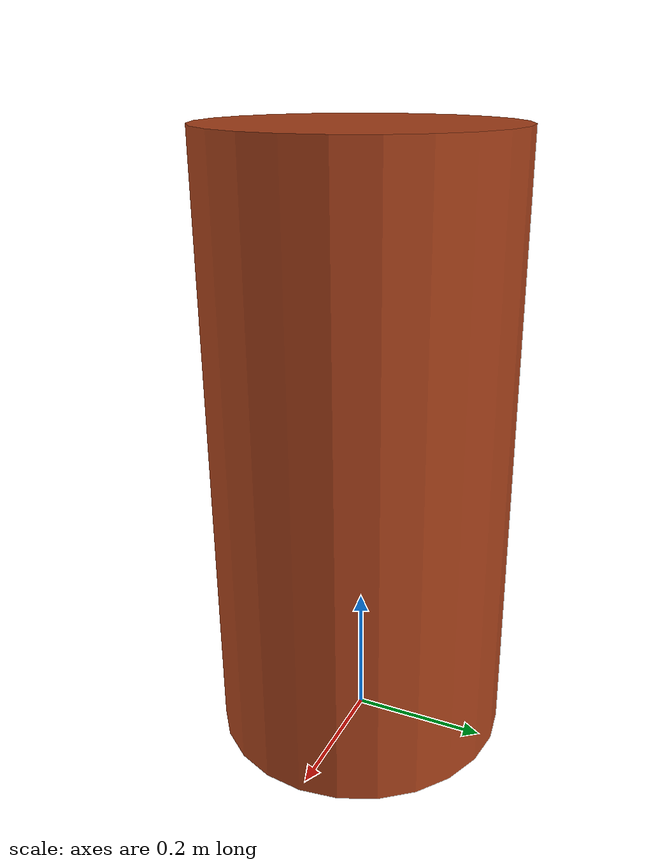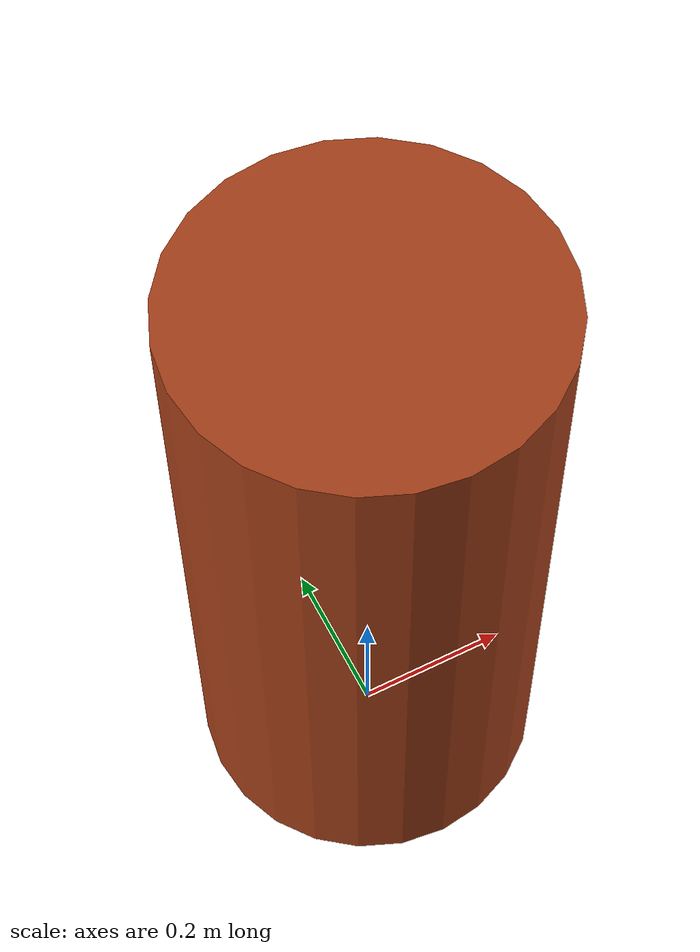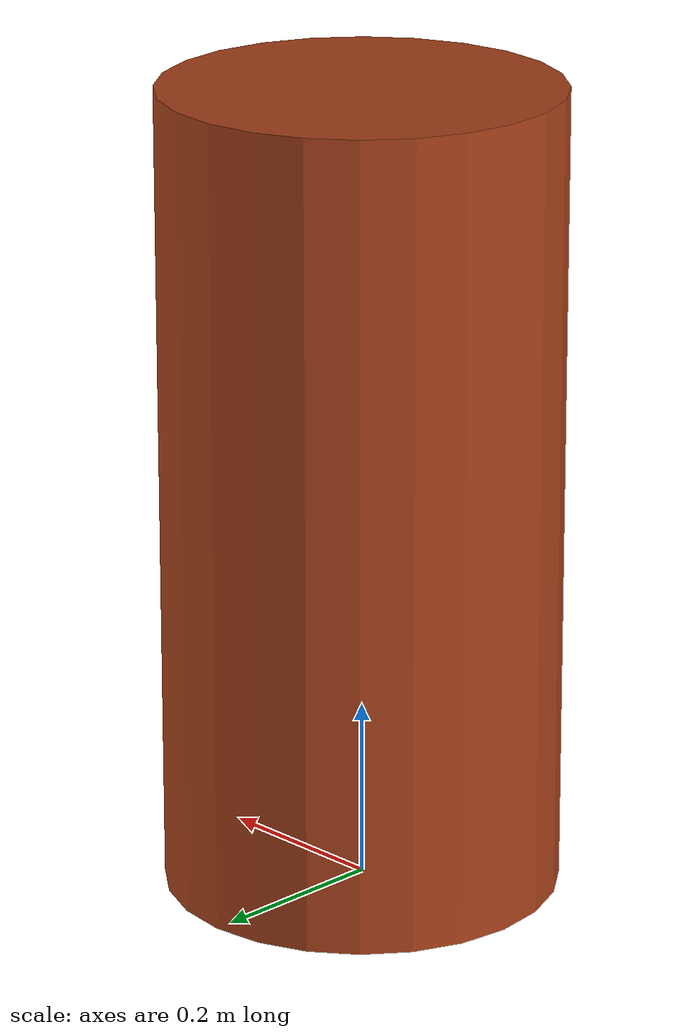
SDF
<?xml version="1.0"?>
<sdf version="1.7">
  <model name="barrel">
    <static>true</static>
    <link name="link">
      <pose>0 0 0.45 0 0 0</pose>
      <collision name="collision">
        <geometry>
          <cylinder>
            <radius>0.22</radius>
            <length>0.9</length>
          </cylinder>
        </geometry>
      </collision>
      <visual name="visual">
        <geometry>
          <cylinder>
            <radius>0.22</radius>
            <length>0.9</length>
          </cylinder>
        </geometry>
        <material>
          <ambient>0.65 0.25 0.1 1.0</ambient>
          <diffuse>0.65 0.25 0.1 1.0</diffuse>
          <specular>0.2 0.1 0.05 1.0</specular>
        </material>
      </visual>
    </link>
  </model>
</sdf>
